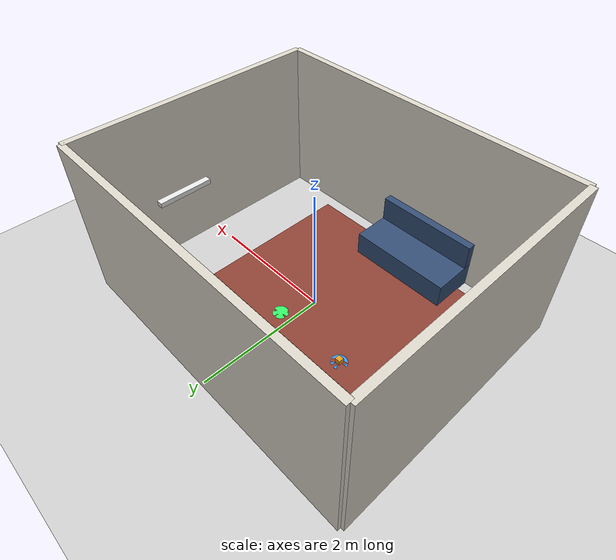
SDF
<?xml version="1.0" ?>
<sdf version="1.5">
  <world name="default">
    <!-- A global light source -->
    <include>
      <uri>model://sun</uri>
    </include>
    <!-- A ground plane -->
    <include>
      <uri>model://ground_plane</uri>
    </include>

    <!-- Physics block copied verbatim from PX4's own empty.world - this is
         their tuned lockstep timing config, not something to modify. -->
    <physics name='default_physics' default='0' type='ode'>
      <gravity>0 0 -9.8066</gravity>
      <ode>
        <solver>
          <type>quick</type>
          <iters>10</iters>
          <sor>1.3</sor>
          <use_dynamic_moi_rescaling>0</use_dynamic_moi_rescaling>
        </solver>
        <constraints>
          <cfm>0</cfm>
          <erp>0.2</erp>
          <contact_max_correcting_vel>100</contact_max_correcting_vel>
          <contact_surface_layer>0.001</contact_surface_layer>
        </constraints>
      </ode>
      <max_step_size>0.004</max_step_size>
      <real_time_factor>1</real_time_factor>
      <real_time_update_rate>250</real_time_update_rate>
      <magnetic_field>6.0e-6 2.3e-5 -4.2e-5</magnetic_field>
    </physics>

    <model name="wall_north">
      <static>true</static>
      <pose>0 2 1.25 0 0 0</pose>
      <link name="link">
        <collision name="collision"><geometry><box><size>5 0.1 2.5</size></box></geometry></collision>
        <visual name="visual">
          <geometry><box><size>5 0.1 2.5</size></box></geometry>
          <material><ambient>0.85 0.83 0.78 1</ambient><diffuse>0.85 0.83 0.78 1</diffuse></material>
        </visual>
      </link>
    </model>

    <model name="wall_south">
      <static>true</static>
      <pose>0 -2 1.25 0 0 0</pose>
      <link name="link">
        <collision name="collision"><geometry><box><size>5 0.1 2.5</size></box></geometry></collision>
        <visual name="visual">
          <geometry><box><size>5 0.1 2.5</size></box></geometry>
          <material><ambient>0.85 0.83 0.78 1</ambient><diffuse>0.85 0.83 0.78 1</diffuse></material>
        </visual>
      </link>
    </model>

    <model name="wall_east">
      <static>true</static>
      <pose>2.5 0 1.25 0 0 1.5708</pose>
      <link name="link">
        <collision name="collision"><geometry><box><size>4 0.1 2.5</size></box></geometry></collision>
        <visual name="visual">
          <geometry><box><size>4 0.1 2.5</size></box></geometry>
          <material><ambient>0.85 0.83 0.78 1</ambient><diffuse>0.85 0.83 0.78 1</diffuse></material>
        </visual>
      </link>
    </model>

    <model name="wall_west">
      <static>true</static>
      <pose>-2.5 0 1.25 0 0 1.5708</pose>
      <link name="link">
        <collision name="collision"><geometry><box><size>4 0.1 2.5</size></box></geometry></collision>
        <visual name="visual">
          <geometry><box><size>4 0.1 2.5</size></box></geometry>
          <material><ambient>0.85 0.83 0.78 1</ambient><diffuse>0.85 0.83 0.78 1</diffuse></material>
        </visual>
      </link>
    </model>

    <!-- Carpet -->
    <model name="carpet">
      <static>true</static>
      <pose>0 -0.5 0.01 0 0 0</pose>
      <link name="link">
        <visual name="visual">
          <geometry><box><size>3 2.5 0.02</size></box></geometry>
          <material><ambient>0.55 0.25 0.2 1</ambient><diffuse>0.55 0.25 0.2 1</diffuse></material>
        </visual>
      </link>
    </model>

    <!-- Sofa, against the south wall - base, backrest, two armrests -->
    <model name="sofa_base">
      <static>true</static>
      <pose>-0.5 -1.6 0.2 0 0 0</pose>
      <link name="link">
        <collision name="collision"><geometry><box><size>1.6 0.7 0.4</size></box></geometry></collision>
        <visual name="visual">
          <geometry><box><size>1.6 0.7 0.4</size></box></geometry>
          <material><ambient>0.2 0.3 0.45 1</ambient><diffuse>0.2 0.3 0.45 1</diffuse></material>
        </visual>
      </link>
    </model>
    <model name="sofa_backrest">
      <static>true</static>
      <pose>-0.5 -1.9 0.5 0 0 0</pose>
      <link name="link">
        <collision name="collision"><geometry><box><size>1.6 0.15 0.6</size></box></geometry></collision>
        <visual name="visual">
          <geometry><box><size>1.6 0.15 0.6</size></box></geometry>
          <material><ambient>0.2 0.3 0.45 1</ambient><diffuse>0.2 0.3 0.45 1</diffuse></material>
        </visual>
      </link>
    </model>

    <!-- TV, wall-mounted on the north wall -->
    <model name="tv">
      <static>true</static>
      <pose>0.5 1.92 1.3 0 0 0</pose>
      <link name="link">
        <visual name="visual">
          <geometry><box><size>1.0 0.05 0.6</size></box></geometry>
          <material><ambient>0.05 0.05 0.05 1</ambient><diffuse>0.05 0.05 0.05 1</diffuse></material>
        </visual>
      </link>
    </model>

    <!-- Windowsill, on the east wall -->
    <model name="windowsill">
      <static>true</static>
      <pose>2.42 0.5 1.0 0 0 0</pose>
      <link name="link">
        <collision name="collision"><geometry><box><size>0.15 0.9 0.08</size></box></geometry></collision>
        <visual name="visual">
          <geometry><box><size>0.15 0.9 0.08</size></box></geometry>
          <material><ambient>0.9 0.9 0.9 1</ambient><diffuse>0.9 0.9 0.9 1</diffuse></material>
        </visual>
      </link>
    </model>

    <model name="pickup_pad">
      <static>true</static>
      <pose>-1 0.5 0.015 0 0 0</pose>
      <link name="link">
        <visual name="visual">
          <geometry><cylinder><radius>0.12</radius><length>0.01</length></cylinder></geometry>
          <material><ambient>0.2 0.6 1 1</ambient><diffuse>0.2 0.6 1 1</diffuse></material>
        </visual>
      </link>
    </model>
    <model name="delivery_pad">
      <static>true</static>
      <pose>0.2 0.5 0.015 0 0 0</pose>
      <link name="link">
        <visual name="visual">
          <geometry><cylinder><radius>0.12</radius><length>0.01</length></cylinder></geometry>
          <material><ambient>0.2 1 0.4 1</ambient><diffuse>0.2 1 0.4 1</diffuse></material>
        </visual>
      </link>
    </model>
    <model name="payload">
      <pose>-1 0.5 0.06 0 0 0</pose>
      <link name="link">
        <inertial>
          <mass>0.02</mass>
          <inertia><ixx>0.0001</ixx><iyy>0.0001</iyy><izz>0.0001</izz><ixy>0</ixy><ixz>0</ixz><iyz>0</iyz></inertia>
        </inertial>
        <collision name="collision"><geometry><box><size>0.08 0.08 0.08</size></box></geometry></collision>
        <visual name="visual">
          <geometry><box><size>0.08 0.08 0.08</size></box></geometry>
          <material><ambient>0.9 0.6 0.1 1</ambient><diffuse>0.9 0.6 0.1 1</diffuse></material>
        </visual>
      </link>
    </model>

  </world>
</sdf>
